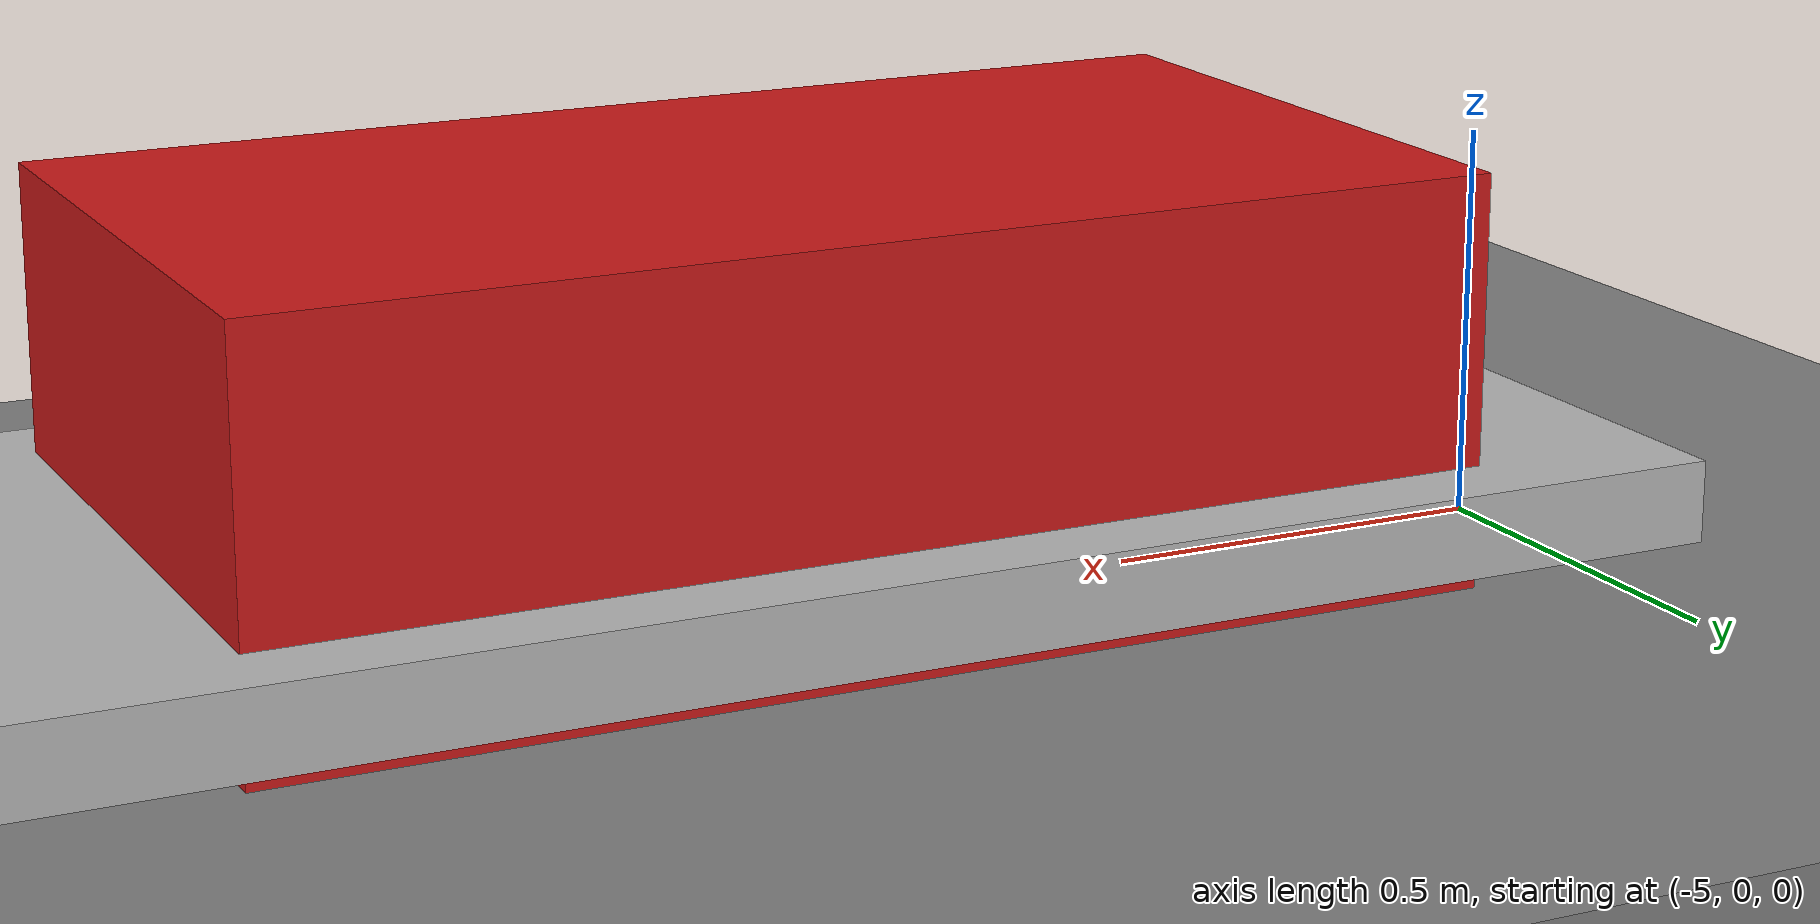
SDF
<?xml version="1.0" ?>
<sdf version="1.7">
  <world name="car_conveyor_world">

    <!-- Core systems (Fortress-style plugin names) -->
    <plugin
    filename="libignition-gazebo-physics-system"
    name="ignition::gazebo::systems::Physics"/>

    <plugin
    filename="libignition-gazebo-sensors-system"
    name="ignition::gazebo::systems::Sensors"/>

    <plugin
    filename="libignition-gazebo-scene-broadcaster-system"
    name="ignition::gazebo::systems::SceneBroadcaster"/>

    <plugin filename="ignition-gazebo-user-commands-system"
        name="ignition::gazebo::systems::UserCommands"/>

    <!-- Simple inline ground plane (no model://ground_plane) -->
    <model name="ground_plane">
      <static>true</static>
      <link name="ground_link">
        <collision name="collision">
          <geometry>
            <box>
              <size>50 50 0.1</size>
            </box>
          </geometry>
        </collision>
        <visual name="visual">
          <geometry>
            <box>
              <size>50 50 0.1</size>
            </box>
          </geometry>
          <material>
            <ambient>0.5 0.5 0.5 1</ambient>
            <diffuse>0.5 0.5 0.5 1</diffuse>
          </material>
        </visual>
      </link>
    </model>

    <!-- Conveyor belt model -->
    <model name="conveyor">
    <pose>0 0 0 0 0 0</pose>
    <static>true</static>

    <link name="belt">
        <pose>0 0 0.15 0 0 0</pose>

        <visual name="belt_visual">
        <geometry>
            <box>
            <size>10 1 0.1</size>
            </box>
        </geometry>
        </visual>

        <collision name="belt_collision">
        <geometry>
            <box>
            <size>10 1 0.1</size>
            </box>
        </geometry>
        <surface>
            <friction>
            <ode>
                <mu>2.0</mu>
                <mu2>2.0</mu2>
            </ode>
            </friction>
        </surface>
        </collision>
    </link>

    <!-- TrackController system plugin -->
    <plugin
    filename="libignition-gazebo-track-controller-system.so"
    name="gz::sim::systems::TrackController">

    <!-- Must match the link name exactly -->
    <link>belt</link>

    <!-- Enable debug prints -->
    <debug>1</debug>

    <!-- GZ command topic for belt velocity -->
    <velocity_topic>/conveyor/track_cmd_vel</velocity_topic>

    <!-- Optional odometry topic -->
    <odometry_topic>/conveyor/odometry</odometry_topic>
    <odometry_publish_frequency>50</odometry_publish_frequency>

    <!-- Some limits -->
    <min_velocity>-2.0</min_velocity>
    <max_velocity> 2.0</max_velocity>
    </plugin>

    </model>

    <!-- Simple "car" box sitting on the conveyor near the left end -->
    <!-- We'll swap this for your DAE mesh after the world works. -->

    <model name="conveyor_car">
    <pose>-4.0 0 0.3 0 0 0</pose>
    <static>false</static>

    <link name="chassis">
        <pose>0 0 0 0 0 0</pose>

        <visual name="car_visual">
        <geometry>
            <box>
            <size>1.5 0.8 0.5</size>
            </box>
        </geometry>
        <material>
            <ambient>0.8 0.1 0.1 1</ambient>
            <diffuse>0.8 0.1 0.1 1</diffuse>
        </material>
        </visual>

        <collision name="car_collision">
        <geometry>
            <box>
            <size>1.5 0.8 0.5</size>
            </box>
        </geometry>
        </collision>

        <inertial>
        <mass>50</mass>
        <inertia>
            <ixx>10</ixx><ixy>0</ixy><ixz>0</ixz>
            <iyy>10</iyy><iyz>0</iyz>
            <izz>10</izz>
        </inertia>
        </inertial>
    </link>

    <!-- NEW: VelocityControl system -->
    <plugin
        filename="ignition-gazebo-velocity-control-system"
        name="ignition::gazebo::systems::VelocityControl">
        <!-- Optional: override topic; otherwise defaults to /model/conveyor_car/cmd_vel -->
        <topic>/model/conveyor_car/cmd_vel</topic>
        <!-- Optional initial velocity, e.g. start moving right away -->
    </plugin>
    </model>

  </world>
</sdf>
